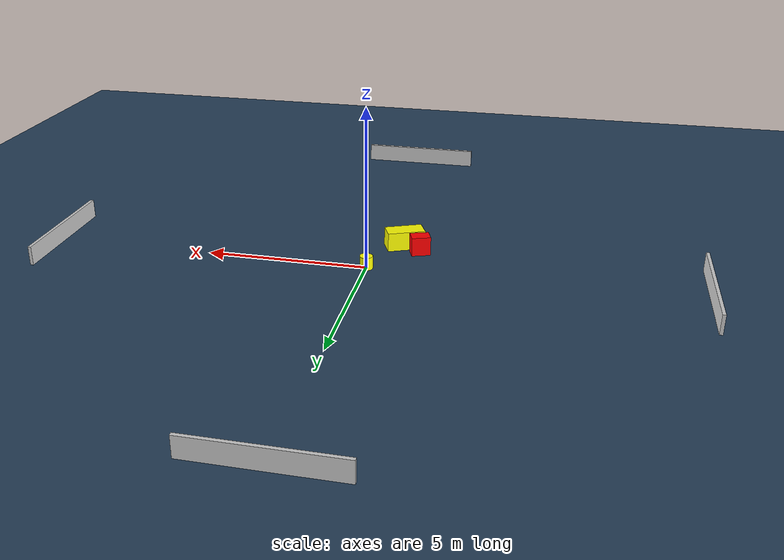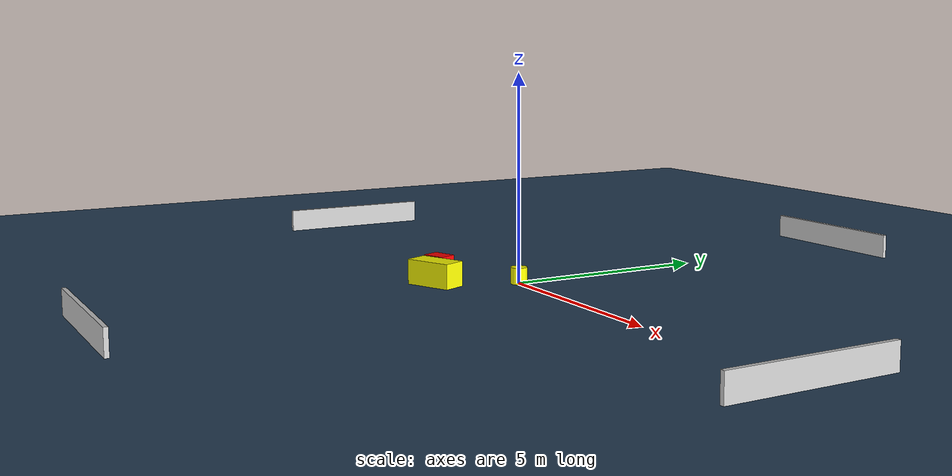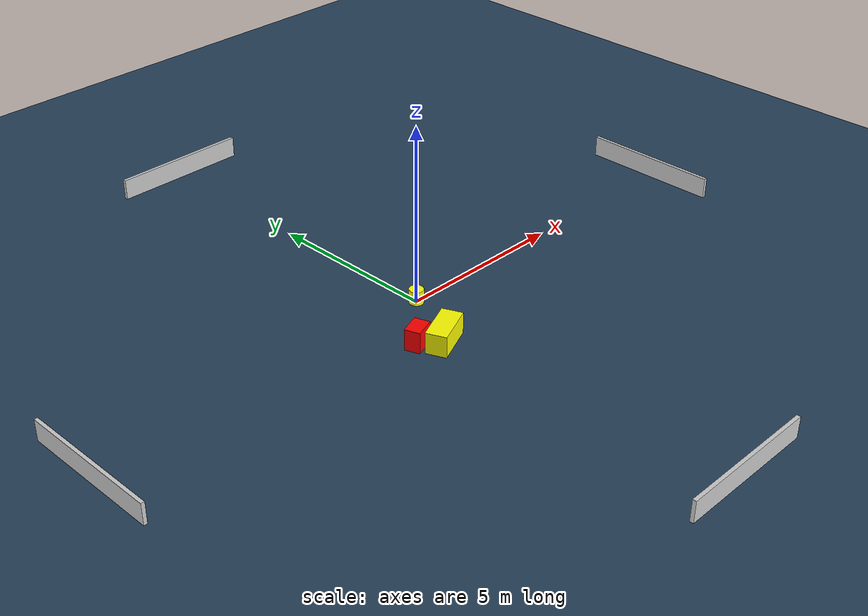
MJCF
<?xml version="1.0" ?>
<mujoco model="generated_environment">
  <option timestep="0.01" integrator="RK4" cone="elliptic"/>
  <default>
    <geom density="1"/>
  </default>
  <asset>
    <texture builtin="gradient" height="3072" name="skybox" rgb1="0.3 0.5 0.7" rgb2="0 0 0" type="skybox" width="512"/>
    <texture builtin="checker" height="300" name="groundplane" rgb1="0.2 0.3 0.4" rgb2="0.1 0.2 0.3" type="2d" width="300"/>
    <material name="groundplane" reflectance="0.2" texrepeat="5 5" texture="groundplane"/>
  </asset>
  <worldbody>
    <light dir="0 0 -1" directional="true" pos="0 0 1.5"/>
    <geom condim="3" friction="0.5 0.005 0.001" material="groundplane" name="floor" pos="0 0 0" size="0 0 0.05" type="plane"/>
    <body name="walls">
      <geom name="wall_1" condim="4" pos="-10.0 0.0 0.3" rgba="0.800000011920929 0.800000011920929 0.800000011920929 1.0" size="0.05 2.0 0.3" type="box"/>
      <geom name="wall_2" condim="4" pos="10.0 0.0 0.3" rgba="0.800000011920929 0.800000011920929 0.800000011920929 1.0" size="0.05 2.0 0.3" type="box"/>
      <geom name="wall_3" condim="4" pos="0.0 -10.0 0.3" rgba="0.800000011920929 0.800000011920929 0.800000011920929 1.0" size="2.0 0.05 0.3" type="box"/>
      <geom name="wall_4" condim="4" pos="0.0 10.0 0.3" rgba="0.800000011920929 0.800000011920929 0.800000011920929 1.0" size="2.0 0.05 0.3" type="box"/>
    </body>
    <body name="robot">
      <joint name="joint_x" type="slide" pos="0 0 0" axis="1 0 0"/>
      <joint name="joint_y" type="slide" pos="0 0 0" axis="0 1 0"/>
      <geom name="robot" type="cylinder" pos="0.0 0.0 0.2" size="0.2 0.2 0.0" mass="5.0" friction="1.0 0.005 0.0001" condim="4" rgba="1.0 1.0 0.0 1.0"/>
    </body>
    <body name="obstacle_1_movable">
      <geom name="obstacle_1_movable" condim="4" pos="-0.8485935476984778 -1.8038897158771983 0.3" euler="0 0 293.50155296799034" friction="0.0 0.005 0.001" rgba="1.0 1.0 0.0 1.0" size="0.28691411512485904 0.5950772088698871 0.3" type="box" mass="0.1"/>
      <joint type="free"/>
    </body>
    <body name="obstacle_2_static">
      <geom name="obstacle_2_static" condim="4" pos="-1.4066420249040996 -1.4178425946507718 0.3" euler="0 0 199.31929625706215" friction="0.0 0.005 0.001" rgba="1.0 0.0 0.0 1.0" size="0.29678860679695196 0.21417441841487483 0.3" type="box"/>
    </body>
  </worldbody>
  <actuator>
    <motor name="actuator_x" joint="joint_x" gear="1" ctrlrange="-1 1"/>
    <motor name="actuator_y" joint="joint_y" gear="1" ctrlrange="-1 1"/>
  </actuator>
</mujoco>
